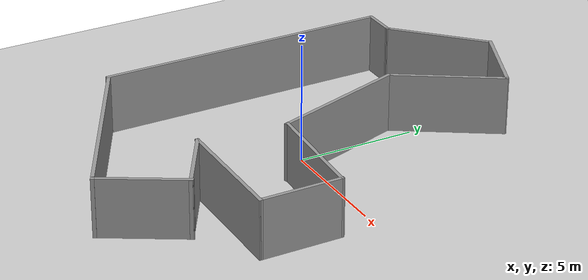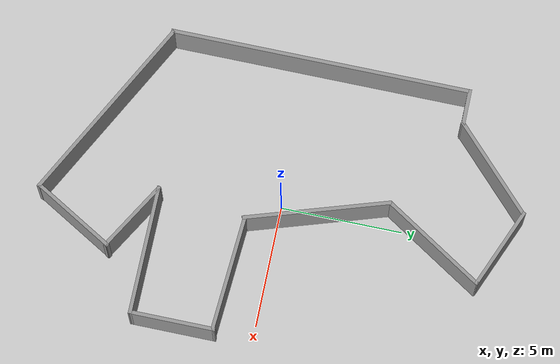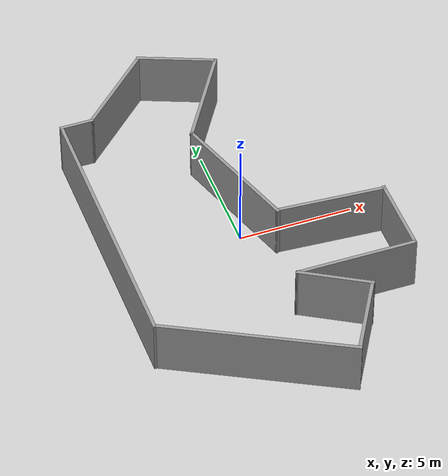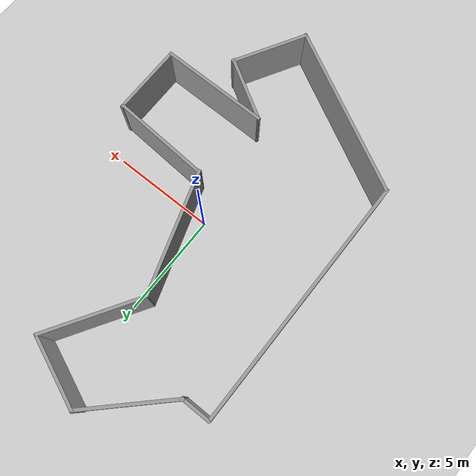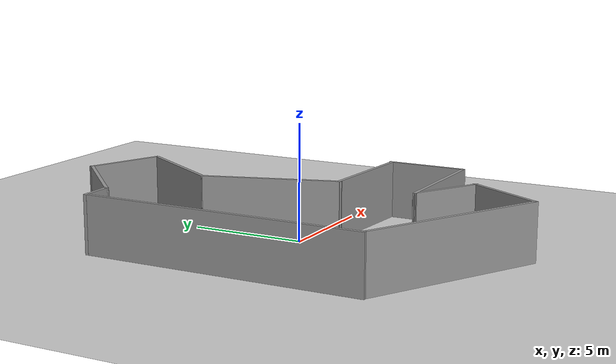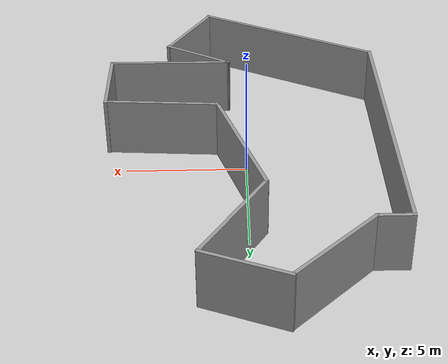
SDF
<sdf version="1.6">
 <world name="default">
  <light name="sun" type="directional">
   <pose>0 0 10 0 -0 0</pose>
   <diffuse>0.8 0.8 0.8 1</diffuse>
   <specular>0.2 0.2 0.2 1</specular>
   <attenuation>
    <range>1000</range>
    <constant>0.9</constant>
    <linear>0.01</linear>
    <quadratic>0.001</quadratic>
   </attenuation>
   <direction>-0.5 0.1 -0.9</direction>
  </light>
  <model name="ground_plane">
   <static>1</static>
   <link name="link">
    <collision name="collision">
     <geometry><plane><normal>0 0 1</normal><size>100 100</size></plane></geometry>
     <surface>
      <contact><collide_bitmask>65535</collide_bitmask></contact>
      <friction><ode><mu>100</mu><mu2>50</mu2></ode></friction>
     </surface>
    </collision>
    <visual name="visual">
     <cast_shadows>0</cast_shadows>
     <geometry><plane><normal>0 0 1</normal><size>100 100</size></plane></geometry>
     <material>
      <script><uri>file://media/materials/scripts/gazebo.material</uri><name>Gazebo/Grey</name></script>
     </material>
    </visual>
   </link>
  </model>
  <gravity>0 0 -9.8</gravity>
  <magnetic_field>6e-06 2.3e-05 -4.2e-05</magnetic_field>
  <atmosphere type="adiabatic"/>
  <physics name="default_physics" default="0" type="ode">
   <max_step_size>0.001</max_step_size>
   <real_time_factor>1</real_time_factor>
   <real_time_update_rate>1000</real_time_update_rate>
  </physics>
  <scene><ambient>0.4 0.4 0.4 1</ambient><background>0.7 0.7 0.7 1</background><shadows>1</shadows></scene>
  <audio><device>default</device></audio>
  <spherical_coordinates>
   <surface_model>EARTH_WGS84</surface_model>
   <latitude_deg>0</latitude_deg>
   <longitude_deg>0</longitude_deg>
   <elevation>0</elevation>
   <heading_deg>0</heading_deg>
  </spherical_coordinates>
  <model name="simple_env_3_0">
   <pose>0.04266 0.034967 0 0 -0 0</pose>
   <link name="Wall_52">
    <collision name="Wall_52_Collision">
     <geometry><box><size>12.25 0.15 2.5</size></box></geometry>
     <pose>0 0 1.25 0 -0 0</pose>
    </collision>
    <visual name="Wall_52_Visual">
     <pose>0 0 1.25 0 -0 0</pose>
     <geometry><box><size>12.25 0.15 2.5</size></box></geometry>
     <material>
      <script><uri>file://media/materials/scripts/gazebo.material</uri><name>Gazebo/Grey</name></script>
      <ambient>1 1 1 1</ambient>
     </material>
     <meta><layer>0</layer></meta>
    </visual>
    <pose>-5.8075 0.347209 0 0 -0 -1.5708</pose>
   </link>
   <link name="Wall_53">
    <collision name="Wall_53_Collision">
     <geometry><box><size>8.39913 0.15 2.5</size></box></geometry>
     <pose>0 0 1.25 0 -0 0</pose>
    </collision>
    <visual name="Wall_53_Visual">
     <pose>0 0 1.25 0 -0 0</pose>
     <geometry><box><size>8.39913 0.15 2.5</size></box></geometry>
     <material>
      <script><uri>file://media/materials/scripts/gazebo.material</uri><name>Gazebo/Grey</name></script>
      <ambient>1 1 1 1</ambient>
     </material>
     <meta><layer>0</layer></meta>
    </visual>
    <pose>-2.11127 -7.65175 0 0 -0 -0.492153</pose>
   </link>
   <link name="Wall_54">
    <collision name="Wall_54_Collision">
     <geometry><box><size>3.75 0.15 2.5</size></box></geometry>
     <pose>0 0 1.25 0 -0 0</pose>
    </collision>
    <visual name="Wall_54_Visual">
     <pose>0 0 1.25 0 -0 0</pose>
     <geometry><box><size>3.75 0.15 2.5</size></box></geometry>
     <material>
      <script><uri>file://media/materials/scripts/gazebo.material</uri><name>Gazebo/Grey</name></script>
      <ambient>1 1 1 1</ambient>
     </material>
     <meta><layer>0</layer></meta>
    </visual>
    <pose>2.42379 -8.00209 0 0 -0 1.0472</pose>
   </link>
   <link name="Wall_55">
    <collision name="Wall_55_Collision">
     <geometry><box><size>3.25201 0.15 2.5</size></box></geometry>
     <pose>0 0 1.25 0 -0 0</pose>
    </collision>
    <visual name="Wall_55_Visual">
     <pose>0 0 1.25 0 -0 0</pose>
     <geometry><box><size>3.25201 0.15 2.5</size></box></geometry>
     <material>
      <script><uri>file://media/materials/scripts/gazebo.material</uri><name>Gazebo/Grey</name></script>
      <ambient>1 1 1 1</ambient>
     </material>
     <meta><layer>0</layer></meta>
    </visual>
    <pose>1.99026 -5.69097 0 0 -0 2.60563</pose>
   </link>
   <link name="Wall_56">
    <collision name="Wall_56_Collision">
     <geometry><box><size>5.29688 0.15 2.5</size></box></geometry>
     <pose>0 0 1.25 0 -0 0</pose>
    </collision>
    <visual name="Wall_56_Visual">
     <pose>0 0 1.25 0 -0 0</pose>
     <geometry><box><size>5.29688 0.15 2.5</size></box></geometry>
     <material>
      <script><uri>file://media/materials/scripts/gazebo.material</uri><name>Gazebo/Grey</name></script>
      <ambient>1 1 1 1</ambient>
     </material>
     <meta><layer>0</layer></meta>
    </visual>
    <pose>3.23009 -4.92033 0 0 -0 -0.008318</pose>
   </link>
   <link name="Wall_57">
    <collision name="Wall_57_Collision">
     <geometry><box><size>3.5 0.15 2.5</size></box></geometry>
     <pose>0 0 1.25 0 -0 0</pose>
    </collision>
    <visual name="Wall_57_Visual">
     <pose>0 0 1.25 0 -0 0</pose>
     <geometry><box><size>3.5 0.15 2.5</size></box></geometry>
     <material>
      <script><uri>file://media/materials/scripts/gazebo.material</uri><name>Gazebo/Grey</name></script>
      <ambient>1 1 1 1</ambient>
     </material>
     <meta><layer>0</layer></meta>
    </visual>
    <pose>5.80344 -3.22696 0 0 -0 1.5708</pose>
   </link>
   <link name="Wall_58">
    <collision name="Wall_58_Collision">
     <geometry><box><size>4.83614 0.15 2.5</size></box></geometry>
     <pose>0 0 1.25 0 -0 0</pose>
    </collision>
    <visual name="Wall_58_Visual">
     <pose>0 0 1.25 0 -0 0</pose>
     <geometry><box><size>4.83614 0.15 2.5</size></box></geometry>
     <material>
      <script><uri>file://media/materials/scripts/gazebo.material</uri><name>Gazebo/Grey</name></script>
      <ambient>1 1 1 1</ambient>
     </material>
     <meta><layer>0</layer></meta>
    </visual>
    <pose>3.46588 -1.43112 0 0 -0 3.07299</pose>
   </link>
   <link name="Wall_59">
    <collision name="Wall_59_Collision">
     <geometry><box><size>6.01628 0.15 2.5</size></box></geometry>
     <pose>0 0 1.25 0 -0 0</pose>
    </collision>
    <visual name="Wall_59_Visual">
     <pose>0 0 1.25 0 -0 0</pose>
     <geometry><box><size>6.01628 0.15 2.5</size></box></geometry>
     <material>
      <script><uri>file://media/materials/scripts/gazebo.material</uri><name>Gazebo/Grey</name></script>
      <ambient>1 1 1 1</ambient>
     </material>
     <meta><layer>0</layer></meta>
    </visual>
    <pose>0.233909 1.48317 0 0 -0 1.88067</pose>
   </link>
   <link name="Wall_60">
    <collision name="Wall_60_Collision">
     <geometry><box><size>4.8304 0.15 2.5</size></box></geometry>
     <pose>0 0 1.25 0 -0 0</pose>
    </collision>
    <visual name="Wall_60_Visual">
     <pose>0 0 1.25 0 -0 0</pose>
     <geometry><box><size>4.8304 0.15 2.5</size></box></geometry>
     <material>
      <script><uri>file://media/materials/scripts/gazebo.material</uri><name>Gazebo/Grey</name></script>
      <ambient>1 1 1 1</ambient>
     </material>
     <meta><layer>0</layer></meta>
    </visual>
    <pose>0.579852 6.30083 0 0 -0 1.01217</pose>
   </link>
   <link name="Wall_61">
    <collision name="Wall_61_Collision">
     <geometry><box><size>3.54467 0.15 2.5</size></box></geometry>
     <pose>0 0 1.25 0 -0 0</pose>
    </collision>
    <visual name="Wall_61_Visual">
     <pose>0 0 1.25 0 -0 0</pose>
     <geometry><box><size>3.54467 0.15 2.5</size></box></geometry>
     <material>
      <script><uri>file://media/materials/scripts/gazebo.material</uri><name>Gazebo/Grey</name></script>
      <ambient>1 1 1 1</ambient>
     </material>
     <meta><layer>0</layer></meta>
    </visual>
    <pose>0.25 8.95987 0 0 -0 2.7521</pose>
   </link>
   <link name="Wall_62">
    <collision name="Wall_62_Collision">
     <geometry><box><size>4.5297 0.15 2.5</size></box></geometry>
     <pose>0 0 1.25 0 -0 0</pose>
    </collision>
    <visual name="Wall_62_Visual">
     <pose>0 0 1.25 0 -0 0</pose>
     <geometry><box><size>4.5297 0.15 2.5</size></box></geometry>
     <material>
      <script><uri>file://media/materials/scripts/gazebo.material</uri><name>Gazebo/Grey</name></script>
      <ambient>1 1 1 1</ambient>
     </material>
     <meta><layer>0</layer></meta>
    </visual>
    <pose>-2.88931 8.04677 0 0 -0 -2.36962</pose>
   </link>
   <link name="Wall_63">
    <collision name="Wall_63_Collision">
     <geometry><box><size>1.5 0.15 2.5</size></box></geometry>
     <pose>0 0 1.25 0 -0 0</pose>
    </collision>
    <visual name="Wall_63_Visual">
     <pose>0 0 1.25 0 -0 0</pose>
     <geometry><box><size>1.5 0.15 2.5</size></box></geometry>
     <material>
      <script><uri>file://media/materials/scripts/gazebo.material</uri><name>Gazebo/Grey</name></script>
      <ambient>1 1 1 1</ambient>
     </material>
     <meta><layer>0</layer></meta>
    </visual>
    <pose>-5.1334 6.51924 0 0 -0 3.14159</pose>
   </link>
   <static>1</static>
  </model>
 </world>
</sdf>
